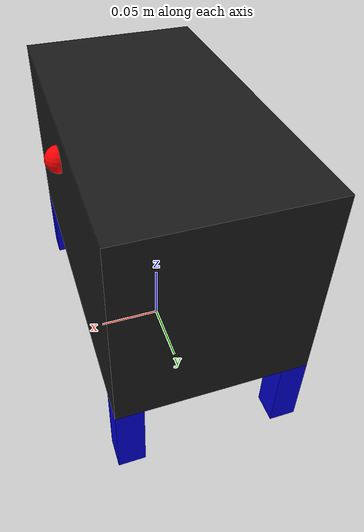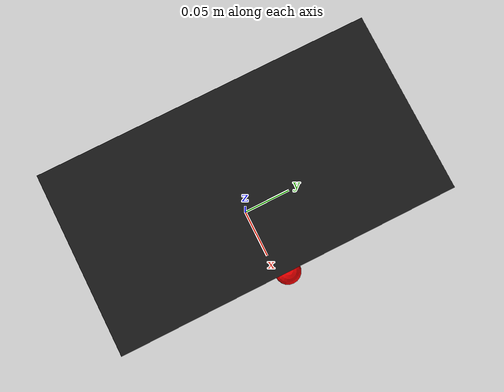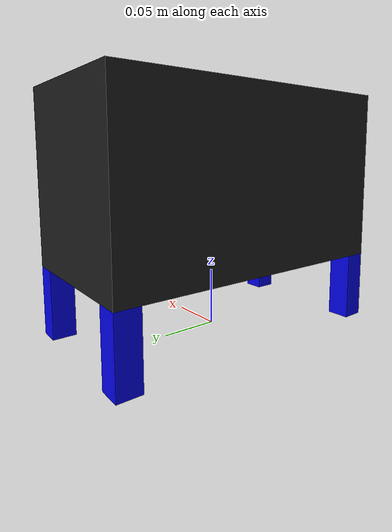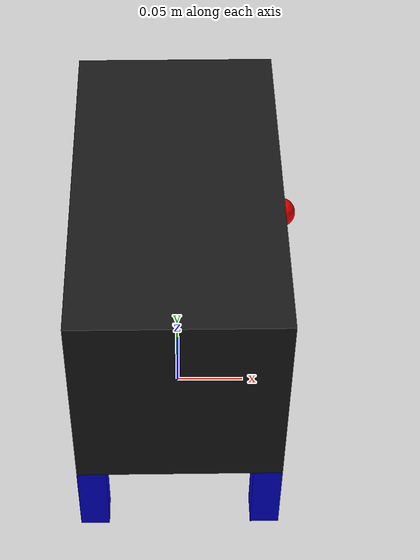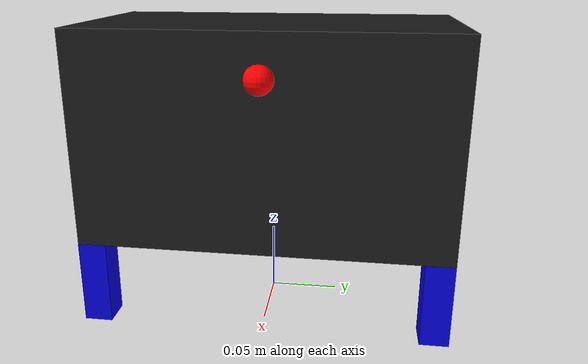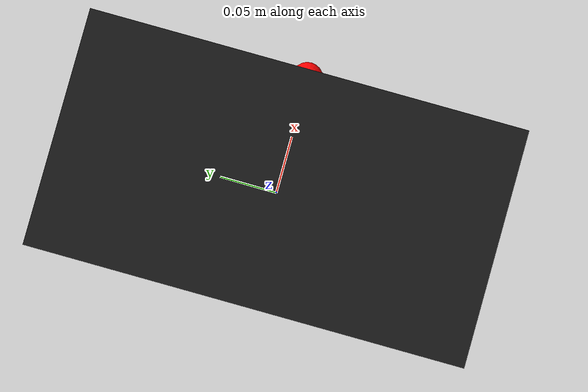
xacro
<?xml version="1.0"?>

<robot name="tbox"
  xmlns:sensor="http://playerstage.sourceforge.net/gazebo/xmlschema/#sensor"
  xmlns:controller="http://playerstage.sourceforge.net/gazebo/xmlschema/#controller"
  xmlns:interface="http://playerstage.sourceforge.net/gazebo/xmlschema/#interface"
  xmlns:xacro="http://ros.org/wiki/xacro">

  <xacro:property name="name" value="tbox" /> <!-- Box height -->
  <xacro:property name="boxh" value=".15" /> <!-- Box height -->
  <xacro:property name="boxw" value=".14" /> <!-- Box width -->
  <xacro:property name="boxl" value=".26" /> <!-- Box length -->
  <xacro:property name="legw" value=".02" /> <!-- Legs width -->
  <xacro:property name="legh" value=".06" /> <!-- Legs height -->
  <xacro:property name="ledr" value=".01" /> <!-- LED radius -->
  <xacro:property name="leds" value=".03" /> <!-- LED space to top -->

  <!-- Internal macros -->
  <!-- Macro for leg -->
  <xacro:macro name="tbox_leg" params="name parent *origin">
    <!-- Leg -->
    <link name="${name}">
      <inertial>
        <insert_block name="origin" />
        <mass value="0.02"/>
        <inertia ixx="0.0001" ixy="0" ixz="0" iyy="0.0001" iyz="0" izz="0.0001"/>
      </inertial>

      <collision name="collision">
        <insert_block name="origin" />
        <geometry>
          <box size="${legw} ${legw} ${legh}"/>
        </geometry>
      </collision>

      <visual name="visual">
        <insert_block name="origin" />
        <geometry>
          <box size="${legw} ${legw} ${legh}"/>
        </geometry>
        <material name="blue">
          <color rgba="0.0 0.0 0.851 1.0"/>
        </material>
      </visual>
    </link>
    <gazebo reference="${name}">
      <material>Gazebo/Gold</material>
    </gazebo>

    <!-- Attach right fingers to left fingers -->
    <joint name="${name}_base_link_joint" type="fixed">
      <parent link="${parent}"/>
      <child link="${name}"/>
    </joint>

  </xacro:macro>

 <!-- tbox macro -->
    <!-- Base link of the tbox -->
    <link name="${name}_base_link">
      <inertial>
        <origin xyz="0.0 0.0 ${boxh/2+legh}" rpy="0.0 0.0 0.0"/>
        <mass value="2.0"/>
        <inertia ixx="0.005" ixy="0" ixz="0" iyy="0.005" iyz="0" izz="0.005"/>
      </inertial>

      <collision name="collision">
        <origin xyz="0.0 0.0 ${boxh/2+legh}" rpy="0.0 0.0 0.0"/>
        <geometry>
          <box size="${boxw} ${boxl} ${boxh}"/>
        </geometry>
      </collision>

      <visual name="visual">
        <origin xyz="0.0 0.0 ${boxh/2+legh}" rpy="0.0 0.0 0.0"/>
        <geometry>
          <box size="${boxw} ${boxl} ${boxh}"/>
        </geometry>
        <material name="black">
          <color rgba="0.1 0.1 0.1 1.0"/>
        </material>
      </visual>
    </link>
    <gazebo reference="${name}_base_link">
      <material>Gazebo/FlatBlack</material><!--youbot/DarkGrey-->
      <kp>1000000.0</kp>
      <kd>100.0</kd>
      <mu1>500.0</mu1>
      <mu2>500.0</mu2>
    </gazebo>

    <!-- Add left front leg -->
    <xacro:tbox_leg name="${name}_left_front_leg" parent="${name}_base_link">
      <origin xyz="${boxw/2-legw/2} ${boxl/2-legw/2} ${legh/2}" rpy="0.0 0.0 0.0"/>
    </xacro:tbox_leg>

    <!-- Add right front leg -->
    <xacro:tbox_leg name="${name}_right_front_leg" parent="${name}_base_link">
      <origin xyz="${boxw/2-legw/2} ${-boxl/2+legw/2} ${legh/2}" rpy="0.0 0.0 0.0"/>
    </xacro:tbox_leg>

    <!-- Add left back leg -->
    <xacro:tbox_leg name="${name}_left_back_leg" parent="${name}_base_link">
      <origin xyz="${-boxw/2+legw/2} ${boxl/2-legw/2} ${legh/2}" rpy="0.0 0.0 0.0"/>
    </xacro:tbox_leg>

    <!-- Add right back leg -->
    <xacro:tbox_leg name="${name}_right_back_leg" parent="${name}_base_link">
      <origin xyz="${-boxw/2+legw/2} ${-boxl/2+legw/2} ${legh/2}" rpy="0.0 0.0 0.0"/>
    </xacro:tbox_leg>

    <!-- Add LED -->
    <link name="${name}_led_link">
      <inertial>
        <origin xyz="${boxw/2} 0.0 ${boxh+legh-leds}" rpy="0.0 0.0 0.0"/>
        <mass value="0.005"/>
        <!-- Inertia is 2/3*m*r^2 = 2/3*0.005*0.05^2-->
        <inertia ixx="0.000008" ixy="0" ixz="0" iyy="0.000008" iyz="0" izz="0.000008"/>
      </inertial>

      <collision name="collision">
        <origin xyz="${boxw/2} 0.0 ${boxh+legh-leds}" rpy="0.0 0.0 0.0"/>
        <geometry>
          <sphere radius="${ledr}"/>
        </geometry>
      </collision>

      <visual name="visual">
        <origin xyz="${boxw/2} 0.0 ${boxh+legh-leds}" rpy="0.0 0.0 0.0"/>
        <geometry>
          <sphere radius="${ledr}"/>
        </geometry>
        <material name="red">
          <color rgba="1 0.0 0.0 1.0"/>
        </material>
      </visual>
    </link>
    <gazebo reference="${name}_led_link">
      <material>Gazebo/Red</material>
    </gazebo>

    <!-- Attach LED to base -->
    <!-- This should be a fixed joint, but then I could not access the LED -->
    <joint name="${name}_led_link_joint" type="fixed">
      <parent link="${name}_base_link"/>
      <child link="${name}_led_link"/>
    </joint>

    <!-- CONTROLLERS -->
    <gazebo>
      <plugin name="${name}_tbox_controller" filename="libtbox_plugin.so">
        <alwaysOn>true</alwaysOn>
        <update>100</update>
        <updateRate>10.0</updateRate>
        <ledLink>${name}_led_link</ledLink>
        <baseLink>${name}_base_link</baseLink>
      </plugin>
    </gazebo>
</robot>
